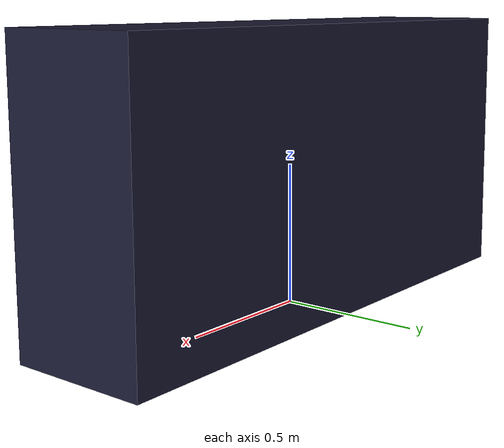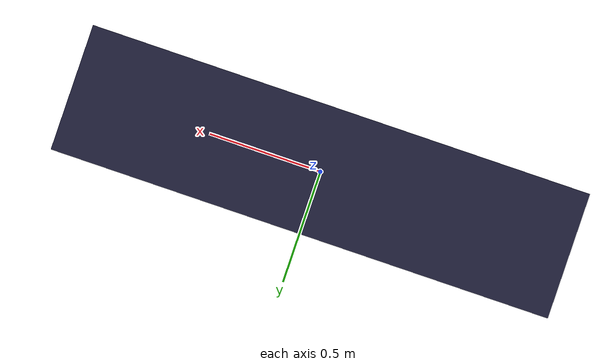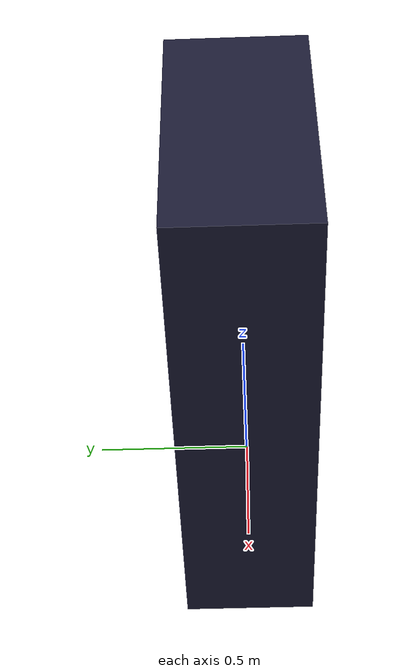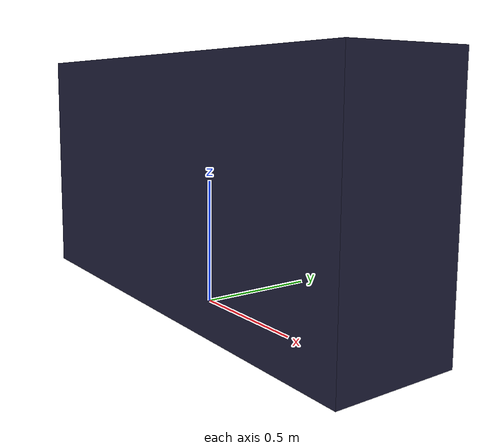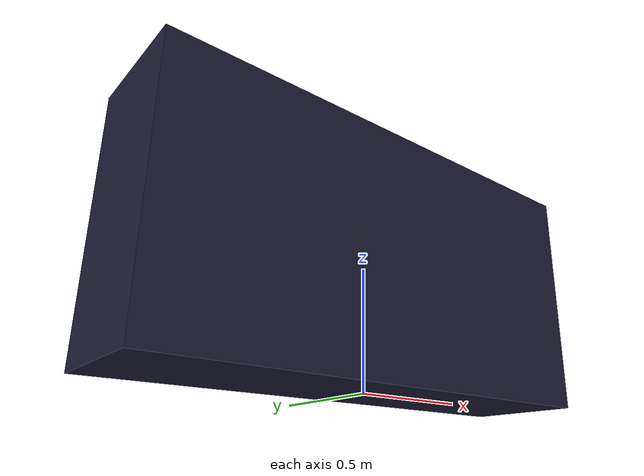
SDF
<sdf version="1.4">
<model name="brick_box_3x1x3">
    <static>1</static>
    <link name="chassis">
      <pose frame="">0 0 0.5 0 0 0</pose>
      <collision name="collision">
        <geometry>
          <box>
            <size>2 0.5 1</size>
          </box>
        </geometry>
        <max_contacts>10</max_contacts>
        <surface>
          <bounce />
          <friction>
            <ode />
          </friction>
          <contact>
            <ode />
          </contact>
        </surface>
      </collision>
      <visual name="visual">
        <geometry>
          <box>
            <size>2 0.5 1</size>
          </box>
        </geometry>
        <material>
          <ambient>0.1 0.1 0.1 1</ambient>
          <diffuse>0.1 0.1 0.2 1</diffuse>
          <specular>0 0 0 0</specular>
          <emissive>0 0 0 1</emissive>
        </material>
      </visual>
      <velocity_decay>
        <linear>0</linear>
        <angular>0</angular>
      </velocity_decay>
      <self_collide>0</self_collide>
      <kinematic>0</kinematic>
      <gravity>1</gravity>
    </link>
  </model>
</sdf>
